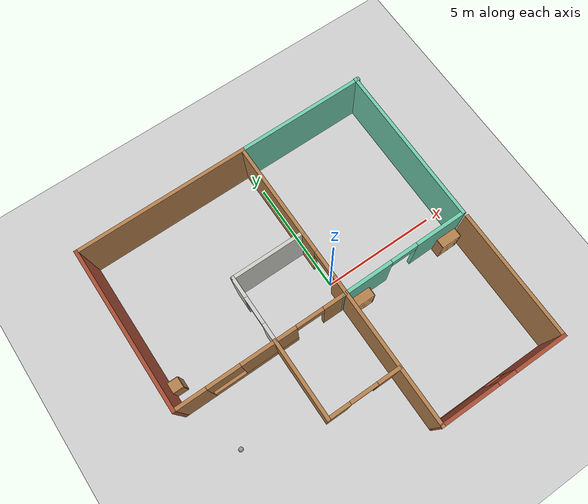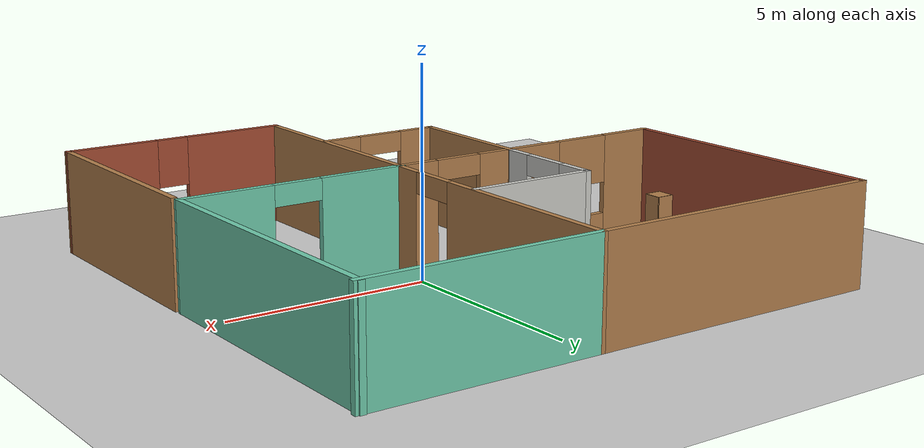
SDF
<sdf version="1.6">
 <world name="default">
  <plugin name="hello" filename="libhello.so"/>
  <light name="sun" type="directional">
   <pose>0 0 10 0 -0 0</pose>
   <diffuse>0.8 0.8 0.8 1</diffuse>
   <specular>0.2 0.2 0.2 1</specular>
   <attenuation>
    <range>1000</range>
    <constant>0.9</constant>
    <linear>0.01</linear>
    <quadratic>0.001</quadratic>
   </attenuation>
   <direction>-0.5 0.1 -0.9</direction>
  </light>
  <model name="ground_plane">
   <static>1</static>
   <link name="link">
    <collision name="collision">
     <geometry><plane><normal>0 0 1</normal><size>100 100</size></plane></geometry>
     <surface><friction><ode><mu>100</mu><mu2>50</mu2></ode></friction></surface>
    </collision>
    <visual name="visual">
     <cast_shadows>0</cast_shadows>
     <geometry><plane><normal>0 0 1</normal><size>100 100</size></plane></geometry>
     <material>
      <script><uri>file://media/materials/scripts/gazebo.material</uri><name>Gazebo/Grey</name></script>
     </material>
    </visual>
   </link>
  </model>
  <gravity>0 0 -9.8</gravity>
  <magnetic_field>6e-06 2.3e-05 -4.2e-05</magnetic_field>
  <atmosphere type="adiabatic"/>
  <physics name="default_physics" default="0" type="ode">
   <max_step_size>0.001</max_step_size>
   <real_time_factor>1</real_time_factor>
   <real_time_update_rate>1000</real_time_update_rate>
  </physics>
  <scene><ambient>0.4 0.4 0.4 1</ambient><background>0.7 0.7 0.7 1</background><shadows>1</shadows></scene>
  <spherical_coordinates>
   <surface_model>EARTH_WGS84</surface_model>
   <latitude_deg>0</latitude_deg>
   <longitude_deg>0</longitude_deg>
   <elevation>0</elevation>
   <heading_deg>0</heading_deg>
  </spherical_coordinates>
  <model name="robohouse-level1">
   <pose>-1.01949 -0.41809 0 0 -0 0</pose>
   <link name="Wall_29">
    <collision name="Wall_29_Collision">
     <geometry><box><size>7.24421 0.15 2.5</size></box></geometry>
     <pose>0 0 1.25 0 -0 0</pose>
    </collision>
    <visual name="Wall_29_Visual">
     <pose>0 0 1.25 0 -0 0</pose>
     <geometry><box><size>7.24421 0.15 2.5</size></box></geometry>
     <material>
      <script><uri>file://media/materials/scripts/gazebo.material</uri><name>Gazebo/Grey</name></script>
      <ambient>0.435294 0.796078 0.67451 1</ambient>
     </material>
     <meta><layer>0</layer></meta>
    </visual>
    <pose>6.47163 2.91936 0 0 -0 1.56934</pose>
   </link>
   <link name="Wall_33">
    <collision name="Wall_33_Collision">
     <geometry><box><size>5.79804 0.15 2.5</size></box></geometry>
     <pose>0 0 1.25 0 -0 0</pose>
    </collision>
    <visual name="Wall_33_Visual">
     <pose>0 0 1.25 0 -0 0</pose>
     <geometry><box><size>5.79804 0.15 2.5</size></box></geometry>
     <material>
      <script><uri>file://media/materials/scripts/gazebo.material</uri><name>Gazebo/Grey</name></script>
      <ambient>0.435294 0.796078 0.67451 1</ambient>
     </material>
     <meta><layer>0</layer></meta>
    </visual>
    <pose>3.73351 6.43806 0 0 -0 5.3e-05</pose>
   </link>
   <link name="Wall_35">
    <collision name="Wall_35_Collision">
     <geometry><box><size>7.61701 0.15 2.5</size></box></geometry>
     <pose>0 0 1.25 0 -0 0</pose>
    </collision>
    <visual name="Wall_35_Visual">
     <pose>0 0 1.25 0 -0 0</pose>
     <geometry><box><size>7.61701 0.15 2.5</size></box></geometry>
     <material>
      <script><uri>file://media/materials/scripts/gazebo.material</uri><name>Gazebo/Wood</name></script>
      <ambient>1 1 1 1</ambient>
     </material>
     <meta><layer>0</layer></meta>
    </visual>
    <pose>-2.82402 6.43806 0 0 -0 3.14155</pose>
   </link>
   <link name="Wall_36">
    <collision name="Wall_36_Collision">
     <geometry><box><size>7.25 0.15 2.5</size></box></geometry>
     <pose>0 0 1.25 0 -0 0</pose>
    </collision>
    <visual name="Wall_36_Visual">
     <pose>0 0 1.25 0 -0 0</pose>
     <geometry><box><size>7.25 0.15 2.5</size></box></geometry>
     <material>
      <script><uri>file://media/materials/scripts/gazebo.material</uri><name>Gazebo/Bricks</name></script>
      <ambient>1 1 1 1</ambient>
     </material>
     <meta><layer>0</layer></meta>
    </visual>
    <pose>-6.55753 2.88821 0 0 0 -1.5708</pose>
   </link>
   <link name="Wall_37">
    <pose>-2.88252 -0.661849 0 0 0 -1.7e-05</pose>
    <visual name="Wall_37_Visual_0">
     <pose>-3.03222 0 1.25 0 -0 0</pose>
     <geometry><box><size>1.43555 0.15 2.5</size></box></geometry>
     <material>
      <script><uri>file://media/materials/scripts/gazebo.material</uri><name>Gazebo/Wood</name></script>
      <ambient>1 1 1 1</ambient>
     </material>
     <meta><layer>0</layer></meta>
    </visual>
    <collision name="Wall_37_Collision_0">
     <geometry><box><size>1.43555 0.15 2.5</size></box></geometry>
     <pose>-3.03222 0 1.25 0 -0 0</pose>
    </collision>
    <visual name="Wall_37_Visual_1">
     <pose>3.25418 0 1.25 0 -0 0</pose>
     <geometry><box><size>0.991638 0.15 2.5</size></box></geometry>
     <material>
      <script><uri>file://media/materials/scripts/gazebo.material</uri><name>Gazebo/Wood</name></script>
      <ambient>1 1 1 1</ambient>
     </material>
     <meta><layer>0</layer></meta>
    </visual>
    <collision name="Wall_37_Collision_1">
     <geometry><box><size>0.991638 0.15 2.5</size></box></geometry>
     <pose>3.25418 0 1.25 0 -0 0</pose>
    </collision>
    <visual name="Wall_37_Visual_2">
     <pose>-0.378044 0 0.25 0 -0 0</pose>
     <geometry><box><size>3.87281 0.15 0.5</size></box></geometry>
     <material>
      <script><uri>file://media/materials/scripts/gazebo.material</uri><name>Gazebo/Wood</name></script>
      <ambient>1 1 1 1</ambient>
     </material>
     <meta><layer>0</layer></meta>
    </visual>
    <collision name="Wall_37_Collision_2">
     <geometry><box><size>3.87281 0.15 0.5</size></box></geometry>
     <pose>-0.378044 0 0.25 0 -0 0</pose>
    </collision>
    <visual name="Wall_37_Visual_3">
     <pose>0.347439 0 1.5 0 -0 0</pose>
     <geometry><box><size>2.42185 0.15 2</size></box></geometry>
     <material>
      <script><uri>file://media/materials/scripts/gazebo.material</uri><name>Gazebo/Wood</name></script>
      <ambient>1 1 1 1</ambient>
     </material>
     <meta><layer>0</layer></meta>
    </visual>
    <collision name="Wall_37_Collision_3">
     <geometry><box><size>2.42185 0.15 2</size></box></geometry>
     <pose>0.347439 0 1.5 0 -0 0</pose>
    </collision>
    <visual name="Wall_37_Visual_4">
     <pose>-1.58897 0 1.9 0 -0 0</pose>
     <geometry><box><size>1.45097 0.15 1.2</size></box></geometry>
     <material>
      <script><uri>file://media/materials/scripts/gazebo.material</uri><name>Gazebo/Wood</name></script>
      <ambient>1 1 1 1</ambient>
     </material>
     <meta><layer>0</layer></meta>
    </visual>
    <collision name="Wall_37_Collision_4">
     <geometry><box><size>1.45097 0.15 1.2</size></box></geometry>
     <pose>-1.58897 0 1.9 0 -0 0</pose>
    </collision>
    <visual name="Wall_37_Visual_5">
     <pose>2.15836 0 2.25 0 -0 0</pose>
     <geometry><box><size>1.2 0.15 0.5</size></box></geometry>
     <material>
      <script><uri>file://media/materials/scripts/gazebo.material</uri><name>Gazebo/Wood</name></script>
      <ambient>1 1 1 1</ambient>
     </material>
     <meta><layer>0</layer></meta>
    </visual>
    <collision name="Wall_37_Collision_5">
     <geometry><box><size>1.2 0.15 0.5</size></box></geometry>
     <pose>2.15836 0 2.25 0 -0 0</pose>
    </collision>
   </link>
   <link name="Wall_38">
    <pose>3.62949 -0.644911 0 0 -0 0.005992</pose>
    <visual name="Wall_38_Visual_0">
     <pose>-1.76196 0 1.25 0 -0 0</pose>
     <geometry><box><size>2.30011 0.15 2.5</size></box></geometry>
     <material>
      <script><uri>file://media/materials/scripts/gazebo.material</uri><name>Gazebo/Grey</name></script>
      <ambient>0.435294 0.796078 0.67451 1</ambient>
     </material>
     <meta><layer>0</layer></meta>
    </visual>
    <collision name="Wall_38_Collision_0">
     <geometry><box><size>2.30011 0.15 2.5</size></box></geometry>
     <pose>-1.76196 0 1.25 0 -0 0</pose>
    </collision>
    <visual name="Wall_38_Visual_1">
     <pose>1.75006 0 1.25 0 -0 0</pose>
     <geometry><box><size>2.32392 0.15 2.5</size></box></geometry>
     <material>
      <script><uri>file://media/materials/scripts/gazebo.material</uri><name>Gazebo/Grey</name></script>
      <ambient>0.435294 0.796078 0.67451 1</ambient>
     </material>
     <meta><layer>0</layer></meta>
    </visual>
    <collision name="Wall_38_Collision_1">
     <geometry><box><size>2.32392 0.15 2.5</size></box></geometry>
     <pose>1.75006 0 1.25 0 -0 0</pose>
    </collision>
    <visual name="Wall_38_Visual_2">
     <pose>-0.011903 0 2.25 0 -0 0</pose>
     <geometry><box><size>1.2 0.15 0.5</size></box></geometry>
     <material>
      <script><uri>file://media/materials/scripts/gazebo.material</uri><name>Gazebo/Grey</name></script>
      <ambient>0.435294 0.796078 0.67451 1</ambient>
     </material>
     <meta><layer>0</layer></meta>
    </visual>
    <collision name="Wall_38_Collision_2">
     <geometry><box><size>1.2 0.15 0.5</size></box></geometry>
     <pose>-0.011903 0 2.25 0 -0 0</pose>
    </collision>
   </link>
   <link name="Wall_41">
    <pose>0.909486 2.88791 0 0 0 -1.5708</pose>
    <visual name="Wall_41_Visual_0">
     <pose>-1.03109 0 1.25 0 -0 0</pose>
     <geometry><box><size>5.18782 0.15 2.5</size></box></geometry>
     <material>
      <script><uri>file://media/materials/scripts/gazebo.material</uri><name>Gazebo/Wood</name></script>
      <ambient>1 1 1 1</ambient>
     </material>
     <meta><layer>0</layer></meta>
    </visual>
    <collision name="Wall_41_Collision_0">
     <geometry><box><size>5.18782 0.15 2.5</size></box></geometry>
     <pose>-1.03109 0 1.25 0 -0 0</pose>
    </collision>
    <visual name="Wall_41_Visual_1">
     <pose>3.19391 0 1.25 0 -0 0</pose>
     <geometry><box><size>0.862178 0.15 2.5</size></box></geometry>
     <material>
      <script><uri>file://media/materials/scripts/gazebo.material</uri><name>Gazebo/Wood</name></script>
      <ambient>1 1 1 1</ambient>
     </material>
     <meta><layer>0</layer></meta>
    </visual>
    <collision name="Wall_41_Collision_1">
     <geometry><box><size>0.862178 0.15 2.5</size></box></geometry>
     <pose>3.19391 0 1.25 0 -0 0</pose>
    </collision>
    <visual name="Wall_41_Visual_2">
     <pose>2.16282 0 2.25 0 -0 0</pose>
     <geometry><box><size>1.2 0.15 0.5</size></box></geometry>
     <material>
      <script><uri>file://media/materials/scripts/gazebo.material</uri><name>Gazebo/Wood</name></script>
      <ambient>1 1 1 1</ambient>
     </material>
     <meta><layer>0</layer></meta>
    </visual>
    <collision name="Wall_41_Collision_2">
     <geometry><box><size>1.2 0.15 0.5</size></box></geometry>
     <pose>2.16282 0 2.25 0 -0 0</pose>
    </collision>
   </link>
   <link name="Wall_44">
    <collision name="Wall_44_Collision">
     <geometry><box><size>5.93712 0.15 2.5</size></box></geometry>
     <pose>0 0 1.25 0 -0 0</pose>
    </collision>
    <visual name="Wall_44_Visual">
     <pose>0 0 1.25 0 -0 0</pose>
     <geometry><box><size>5.93712 0.15 2.5</size></box></geometry>
     <material>
      <script><uri>file://media/materials/scripts/gazebo.material</uri><name>Gazebo/Wood</name></script>
      <ambient>1 1 1 1</ambient>
     </material>
     <meta><layer>0</layer></meta>
    </visual>
    <pose>0.909486 -3.55565 0 0 0 -1.5708</pose>
   </link>
   <link name="Wall_46">
    <collision name="Wall_46_Collision">
     <geometry><box><size>3.5 0.15 2.5</size></box></geometry>
     <pose>0 0 1.25 0 -0 0</pose>
    </collision>
    <visual name="Wall_46_Visual">
     <pose>0 0 1.25 0 -0 0</pose>
     <geometry><box><size>3.5 0.15 2.5</size></box></geometry>
     <material>
      <script><uri>file://media/materials/scripts/gazebo.material</uri><name>Gazebo/Wood</name></script>
      <ambient>1 1 1 1</ambient>
     </material>
     <meta><layer>0</layer></meta>
    </visual>
    <pose>-2.24403 -2.31187 0 0 0 -1.5708</pose>
   </link>
   <link name="Wall_47">
    <pose>-0.694028 -3.98687 0 0 -0 0</pose>
    <visual name="Wall_47_Visual_0">
     <pose>-1.1065 0 1.25 0 -0 0</pose>
     <geometry><box><size>1.03699 0.15 2.5</size></box></geometry>
     <material>
      <script><uri>file://media/materials/scripts/gazebo.material</uri><name>Gazebo/Wood</name></script>
      <ambient>1 1 1 1</ambient>
     </material>
     <meta><layer>0</layer></meta>
    </visual>
    <collision name="Wall_47_Collision_0">
     <geometry><box><size>1.03699 0.15 2.5</size></box></geometry>
     <pose>-1.1065 0 1.25 0 -0 0</pose>
    </collision>
    <visual name="Wall_47_Visual_1">
     <pose>1.1185 0 1.25 0 -0 0</pose>
     <geometry><box><size>1.01301 0.15 2.5</size></box></geometry>
     <material>
      <script><uri>file://media/materials/scripts/gazebo.material</uri><name>Gazebo/Wood</name></script>
      <ambient>1 1 1 1</ambient>
     </material>
     <meta><layer>0</layer></meta>
    </visual>
    <collision name="Wall_47_Collision_1">
     <geometry><box><size>1.01301 0.15 2.5</size></box></geometry>
     <pose>1.1185 0 1.25 0 -0 0</pose>
    </collision>
    <visual name="Wall_47_Visual_2">
     <pose>0.011994 0 2.25 0 -0 0</pose>
     <geometry><box><size>1.2 0.15 0.5</size></box></geometry>
     <material>
      <script><uri>file://media/materials/scripts/gazebo.material</uri><name>Gazebo/Wood</name></script>
      <ambient>1 1 1 1</ambient>
     </material>
     <meta><layer>0</layer></meta>
    </visual>
    <collision name="Wall_47_Collision_2">
     <geometry><box><size>1.2 0.15 0.5</size></box></geometry>
     <pose>0.011994 0 2.25 0 -0 0</pose>
    </collision>
   </link>
   <link name="Wall_49">
    <pose>-2.24403 0.788134 0 0 -0 1.5708</pose>
    <visual name="Wall_49_Visual_0">
     <pose>-1.0815 0 1.25 0 -0 0</pose>
     <geometry><box><size>0.837004 0.15 2.5</size></box></geometry>
     <material>
      <script><uri>file://media/materials/scripts/gazebo.material</uri><name>Gazebo/CeilingTiled</name></script>
      <ambient>0.760784 0.662745 0.627451 1</ambient>
     </material>
     <meta><layer>0</layer></meta>
    </visual>
    <collision name="Wall_49_Collision_0">
     <geometry><box><size>0.837004 0.15 2.5</size></box></geometry>
     <pose>-1.0815 0 1.25 0 -0 0</pose>
    </collision>
    <visual name="Wall_49_Visual_1">
     <pose>1.0185 0 1.25 0 -0 0</pose>
     <geometry><box><size>0.962996 0.15 2.5</size></box></geometry>
     <material>
      <script><uri>file://media/materials/scripts/gazebo.material</uri><name>Gazebo/CeilingTiled</name></script>
      <ambient>0.760784 0.662745 0.627451 1</ambient>
     </material>
     <meta><layer>0</layer></meta>
    </visual>
    <collision name="Wall_49_Collision_1">
     <geometry><box><size>0.962996 0.15 2.5</size></box></geometry>
     <pose>1.0185 0 1.25 0 -0 0</pose>
    </collision>
    <visual name="Wall_49_Visual_2">
     <pose>-0.062996 0 2.25 0 -0 0</pose>
     <geometry><box><size>1.2 0.15 0.5</size></box></geometry>
     <material>
      <script><uri>file://media/materials/scripts/gazebo.material</uri><name>Gazebo/CeilingTiled</name></script>
      <ambient>0.760784 0.662745 0.627451 1</ambient>
     </material>
     <meta><layer>0</layer></meta>
    </visual>
    <collision name="Wall_49_Collision_2">
     <geometry><box><size>1.2 0.15 0.5</size></box></geometry>
     <pose>-0.062996 0 2.25 0 -0 0</pose>
    </collision>
   </link>
   <link name="Wall_5">
    <collision name="Wall_5_Collision">
     <geometry><box><size>5.75 0.15 2.5</size></box></geometry>
     <pose>0 0 1.25 0 -0 0</pose>
    </collision>
    <visual name="Wall_5_Visual">
     <pose>0 0 1.25 0 -0 0</pose>
     <geometry><box><size>5.75 0.15 2.5</size></box></geometry>
     <material>
      <script><uri>file://media/materials/scripts/gazebo.material</uri><name>Gazebo/Wood</name></script>
      <ambient>1 1 1 1</ambient>
     </material>
     <meta><layer>0</layer></meta>
    </visual>
    <pose>6.49236 -3.66634 0 0 0 -1.5708</pose>
   </link>
   <link name="Wall_50">
    <collision name="Wall_50_Collision">
     <geometry><box><size>0.15 0.15 2.5</size></box></geometry>
     <pose>0 0 1.25 0 -0 0</pose>
    </collision>
    <visual name="Wall_50_Visual">
     <pose>0 0 1.25 0 -0 0</pose>
     <geometry><box><size>0.15 0.15 2.5</size></box></geometry>
     <material>
      <script><uri>file://media/materials/scripts/gazebo.material</uri><name>Gazebo/Grey</name></script>
      <ambient>1 1 1 1</ambient>
     </material>
     <meta><layer>0</layer></meta>
    </visual>
    <pose>-2.24403 2.21313 0 0 -0 0</pose>
   </link>
   <link name="Wall_51">
    <collision name="Wall_51_Collision">
     <geometry><box><size>3.25 0.15 2.5</size></box></geometry>
     <pose>0 0 1.25 0 -0 0</pose>
    </collision>
    <visual name="Wall_51_Visual">
     <pose>0 0 1.25 0 -0 0</pose>
     <geometry><box><size>3.25 0.15 2.5</size></box></geometry>
     <material>
      <script><uri>file://media/materials/scripts/gazebo.material</uri><name>Gazebo/CeilingTiled</name></script>
      <ambient>0.760784 0.662745 0.627451 1</ambient>
     </material>
     <meta><layer>0</layer></meta>
    </visual>
    <pose>-0.694028 2.21313 0 0 -0 0</pose>
   </link>
   <link name="Wall_6">
    <pose>3.70092 -6.45778 0 0 -0 3.13852</pose>
    <visual name="Wall_6_Visual_0">
     <pose>-1.6953 0 1.25 0 -0 0</pose>
     <geometry><box><size>2.3423 0.15 2.5</size></box></geometry>
     <material>
      <script><uri>file://media/materials/scripts/gazebo.material</uri><name>Gazebo/Bricks</name></script>
      <ambient>1 1 1 1</ambient>
     </material>
     <meta><layer>0</layer></meta>
    </visual>
    <collision name="Wall_6_Collision_0">
     <geometry><box><size>2.3423 0.15 2.5</size></box></geometry>
     <pose>-1.6953 0 1.25 0 -0 0</pose>
    </collision>
    <visual name="Wall_6_Visual_1">
     <pose>1.17115 0 0.25 0 -0 0</pose>
     <geometry><box><size>3.3906 0.15 0.5</size></box></geometry>
     <material>
      <script><uri>file://media/materials/scripts/gazebo.material</uri><name>Gazebo/Bricks</name></script>
      <ambient>1 1 1 1</ambient>
     </material>
     <meta><layer>0</layer></meta>
    </visual>
    <collision name="Wall_6_Collision_1">
     <geometry><box><size>3.3906 0.15 0.5</size></box></geometry>
     <pose>1.17115 0 0.25 0 -0 0</pose>
    </collision>
    <visual name="Wall_6_Visual_2">
     <pose>1.57115 0 1.5 0 -0 0</pose>
     <geometry><box><size>2.5906 0.15 2</size></box></geometry>
     <material>
      <script><uri>file://media/materials/scripts/gazebo.material</uri><name>Gazebo/Bricks</name></script>
      <ambient>1 1 1 1</ambient>
     </material>
     <meta><layer>0</layer></meta>
    </visual>
    <collision name="Wall_6_Collision_2">
     <geometry><box><size>2.5906 0.15 2</size></box></geometry>
     <pose>1.57115 0 1.5 0 -0 0</pose>
    </collision>
    <visual name="Wall_6_Visual_3">
     <pose>-0.124149 0 1.9 0 -0 0</pose>
     <geometry><box><size>0.8 0.15 1.2</size></box></geometry>
     <material>
      <script><uri>file://media/materials/scripts/gazebo.material</uri><name>Gazebo/Bricks</name></script>
      <ambient>1 1 1 1</ambient>
     </material>
     <meta><layer>0</layer></meta>
    </visual>
    <collision name="Wall_6_Collision_3">
     <geometry><box><size>0.8 0.15 1.2</size></box></geometry>
     <pose>-0.124149 0 1.9 0 -0 0</pose>
    </collision>
   </link>
   <link name="Window_0">
    <collision name="Window_0_Collision">
     <geometry><box><size>1.4 0.17 0.8</size></box></geometry>
     <pose>0 0 0.4 0 -0 0</pose>
    </collision>
    <visual name="Window_0_Visual">
     <pose>0 0 0.4 0 -0 0</pose>
     <geometry><box><size>1.4 0.17 0.8</size></box></geometry>
     <material>
      <script><uri>file://media/materials/scripts/gazebo.material</uri><name>Gazebo/Grey</name></script>
     </material>
    </visual>
    <pose>1.99581 -6.51508 0.5 0 -0 3.12809</pose>
   </link>
   <static>1</static>
  </model>
  <model name="bookshelf">
   <static>1</static>
   <link name="link">
    <inertial><mass>1</mass></inertial>
    <collision name="back">
     <pose>0 0.005 0.6 0 -0 0</pose>
     <geometry><box><size>0.9 0.01 1.2</size></box></geometry>
    </collision>
    <visual name="visual1">
     <pose>0 0.005 0.6 0 -0 0</pose>
     <geometry><box><size>0.9 0.01 1.2</size></box></geometry>
     <material>
      <script><uri>file://media/materials/scripts/gazebo.material</uri><name>Gazebo/Wood</name></script>
     </material>
    </visual>
    <collision name="left_side">
     <pose>0.45 -0.195 0.6 0 -0 0</pose>
     <geometry><box><size>0.02 0.4 1.2</size></box></geometry>
    </collision>
    <visual name="visual2">
     <pose>0.45 -0.195 0.6 0 -0 0</pose>
     <geometry><box><size>0.02 0.4 1.2</size></box></geometry>
     <material>
      <script><uri>file://media/materials/scripts/gazebo.material</uri><name>Gazebo/Wood</name></script>
     </material>
    </visual>
    <collision name="right_side">
     <pose>-0.45 -0.195 0.6 0 -0 0</pose>
     <geometry><box><size>0.02 0.4 1.2</size></box></geometry>
    </collision>
    <visual name="visual3">
     <pose>-0.45 -0.195 0.6 0 -0 0</pose>
     <geometry><box><size>0.02 0.4 1.2</size></box></geometry>
     <material>
      <script><uri>file://media/materials/scripts/gazebo.material</uri><name>Gazebo/Wood</name></script>
     </material>
    </visual>
    <collision name="bottom">
     <pose>0 -0.195 0.03 0 -0 0</pose>
     <geometry><box><size>0.88 0.4 0.06</size></box></geometry>
    </collision>
    <visual name="visual4">
     <pose>0 -0.195 0.03 0 -0 0</pose>
     <geometry><box><size>0.88 0.4 0.06</size></box></geometry>
     <material>
      <script><uri>file://media/materials/scripts/gazebo.material</uri><name>Gazebo/Wood</name></script>
     </material>
    </visual>
    <collision name="top">
     <pose>0 -0.195 1.19 0 -0 0</pose>
     <geometry><box><size>0.88 0.4 0.02</size></box></geometry>
    </collision>
    <visual name="visual5">
     <pose>0 -0.195 1.19 0 -0 0</pose>
     <geometry><box><size>0.88 0.4 0.02</size></box></geometry>
     <material>
      <script><uri>file://media/materials/scripts/gazebo.material</uri><name>Gazebo/Wood</name></script>
     </material>
    </visual>
    <collision name="low_shelf">
     <pose>0 -0.195 0.43 0 -0 0</pose>
     <geometry><box><size>0.88 0.4 0.02</size></box></geometry>
    </collision>
    <visual name="visual6">
     <pose>0 -0.195 0.43 0 -0 0</pose>
     <geometry><box><size>0.88 0.4 0.02</size></box></geometry>
     <material>
      <script><uri>file://media/materials/scripts/gazebo.material</uri><name>Gazebo/Wood</name></script>
     </material>
    </visual>
    <collision name="high_shelf">
     <pose>0 -0.195 0.8 0 -0 0</pose>
     <geometry><box><size>0.88 0.4 0.02</size></box></geometry>
    </collision>
    <visual name="visual7">
     <pose>0 -0.195 0.8 0 -0 0</pose>
     <geometry><box><size>0.88 0.4 0.02</size></box></geometry>
     <material>
      <script><uri>file://media/materials/scripts/gazebo.material</uri><name>Gazebo/Wood</name></script>
     </material>
    </visual>
   </link>
   <pose>0.538595 -1.18322 0 0 -0 0</pose>
  </model>
  <model name="bookshelf_clone">
   <static>1</static>
   <link name="link">
    <inertial><mass>1</mass></inertial>
    <collision name="back">
     <pose>0 0.005 0.6 0 -0 0</pose>
     <geometry><box><size>0.9 0.01 1.2</size></box></geometry>
    </collision>
    <visual name="visual1">
     <pose>0 0.005 0.6 0 -0 0</pose>
     <geometry><box><size>0.9 0.01 1.2</size></box></geometry>
     <material>
      <script><uri>file://media/materials/scripts/gazebo.material</uri><name>Gazebo/Wood</name></script>
     </material>
    </visual>
    <collision name="left_side">
     <pose>0.45 -0.195 0.6 0 -0 0</pose>
     <geometry><box><size>0.02 0.4 1.2</size></box></geometry>
    </collision>
    <visual name="visual2">
     <pose>0.45 -0.195 0.6 0 -0 0</pose>
     <geometry><box><size>0.02 0.4 1.2</size></box></geometry>
     <material>
      <script><uri>file://media/materials/scripts/gazebo.material</uri><name>Gazebo/Wood</name></script>
     </material>
    </visual>
    <collision name="right_side">
     <pose>-0.45 -0.195 0.6 0 -0 0</pose>
     <geometry><box><size>0.02 0.4 1.2</size></box></geometry>
    </collision>
    <visual name="visual3">
     <pose>-0.45 -0.195 0.6 0 -0 0</pose>
     <geometry><box><size>0.02 0.4 1.2</size></box></geometry>
     <material>
      <script><uri>file://media/materials/scripts/gazebo.material</uri><name>Gazebo/Wood</name></script>
     </material>
    </visual>
    <collision name="bottom">
     <pose>0 -0.195 0.03 0 -0 0</pose>
     <geometry><box><size>0.88 0.4 0.06</size></box></geometry>
    </collision>
    <visual name="visual4">
     <pose>0 -0.195 0.03 0 -0 0</pose>
     <geometry><box><size>0.88 0.4 0.06</size></box></geometry>
     <material>
      <script><uri>file://media/materials/scripts/gazebo.material</uri><name>Gazebo/Wood</name></script>
     </material>
    </visual>
    <collision name="top">
     <pose>0 -0.195 1.19 0 -0 0</pose>
     <geometry><box><size>0.88 0.4 0.02</size></box></geometry>
    </collision>
    <visual name="visual5">
     <pose>0 -0.195 1.19 0 -0 0</pose>
     <geometry><box><size>0.88 0.4 0.02</size></box></geometry>
     <material>
      <script><uri>file://media/materials/scripts/gazebo.material</uri><name>Gazebo/Wood</name></script>
     </material>
    </visual>
    <collision name="low_shelf">
     <pose>0 -0.195 0.43 0 -0 0</pose>
     <geometry><box><size>0.88 0.4 0.02</size></box></geometry>
    </collision>
    <visual name="visual6">
     <pose>0 -0.195 0.43 0 -0 0</pose>
     <geometry><box><size>0.88 0.4 0.02</size></box></geometry>
     <material>
      <script><uri>file://media/materials/scripts/gazebo.material</uri><name>Gazebo/Wood</name></script>
     </material>
    </visual>
    <collision name="high_shelf">
     <pose>0 -0.195 0.8 0 -0 0</pose>
     <geometry><box><size>0.88 0.4 0.02</size></box></geometry>
    </collision>
    <visual name="visual7">
     <pose>0 -0.195 0.8 0 -0 0</pose>
     <geometry><box><size>0.88 0.4 0.02</size></box></geometry>
     <material>
      <script><uri>file://media/materials/scripts/gazebo.material</uri><name>Gazebo/Wood</name></script>
     </material>
    </visual>
   </link>
   <pose>4.82303 -1.16709 0 0 -0 0</pose>
  </model>
  <model name="cabinet">
   <static>1</static>
   <link name="cabinet_bottom_plate">
    <inertial>
     <pose>0 0 -1 0 -0 0</pose>
     <inertia><ixx>2.05</ixx><ixy>0</ixy><ixz>0</ixz><iyy>2.05</iyy><iyz>0</iyz><izz>2.05</izz></inertia>
     <mass>25</mass>
    </inertial>
    <collision name="cabinet_bottom_plate_geom">
     <pose>0 0 0.01 0 -0 0</pose>
     <geometry><box><size>0.45 0.45 0.02</size></box></geometry>
    </collision>
    <visual name="cabinet_bottom_plate_geom_visual">
     <pose>0 0 0.01 0 -0 0</pose>
     <geometry><box><size>0.45 0.45 0.02</size></box></geometry>
     <material>
      <script><uri>file://media/materials/scripts/gazebo.material</uri><name>Gazebo/Wood</name></script>
     </material>
    </visual>
    <collision name="cabinet_bottom_plate_geom_cabinet_back_plate">
     <pose>0.235 0 0.51 0 -0 0</pose>
     <geometry><box><size>0.02 0.45 1.02</size></box></geometry>
    </collision>
    <visual name="cabinet_bottom_plate_geom_cabinet_back_plate_visual">
     <pose>0.235 0 0.51 0 -0 0</pose>
     <geometry><box><size>0.02 0.45 1.02</size></box></geometry>
     <material>
      <script><uri>file://media/materials/scripts/gazebo.material</uri><name>Gazebo/Wood</name></script>
     </material>
    </visual>
    <collision name="cabinet_bottom_plate_geom_cabinet_left_plate">
     <pose>0 0.235 0.51 0 -0 0</pose>
     <geometry><box><size>0.45 0.02 1.02</size></box></geometry>
    </collision>
    <visual name="cabinet_bottom_plate_geom_cabinet_left_plate_visual">
     <pose>0 0.235 0.51 0 -0 0</pose>
     <geometry><box><size>0.45 0.02 1.02</size></box></geometry>
     <material>
      <script><uri>file://media/materials/scripts/gazebo.material</uri><name>Gazebo/Wood</name></script>
     </material>
    </visual>
    <collision name="cabinet_bottom_plate_geom_cabinet_middle_plate">
     <pose>0 0 0.51 0 -0 0</pose>
     <geometry><box><size>0.45 0.45 0.02</size></box></geometry>
    </collision>
    <visual name="cabinet_bottom_plate_geom_cabinet_middle_plate_visual">
     <pose>0 0 0.51 0 -0 0</pose>
     <geometry><box><size>0.45 0.45 0.02</size></box></geometry>
     <material>
      <script><uri>file://media/materials/scripts/gazebo.material</uri><name>Gazebo/Wood</name></script>
     </material>
    </visual>
    <collision name="cabinet_bottom_plate_geom_cabinet_right_plate">
     <pose>0 -0.235 0.51 0 -0 0</pose>
     <geometry><box><size>0.45 0.02 1.02</size></box></geometry>
    </collision>
    <visual name="cabinet_bottom_plate_geom_cabinet_right_plate_visual">
     <pose>0 -0.235 0.51 0 -0 0</pose>
     <geometry><box><size>0.45 0.02 1.02</size></box></geometry>
     <material>
      <script><uri>file://media/materials/scripts/gazebo.material</uri><name>Gazebo/Wood</name></script>
     </material>
    </visual>
    <collision name="cabinet_bottom_plate_geom_cabinet_top_plate">
     <pose>0 0 1.01 0 -0 0</pose>
     <geometry><box><size>0.45 0.45 0.02</size></box></geometry>
    </collision>
    <visual name="cabinet_bottom_plate_geom_cabinet_top_plate_visual">
     <pose>0 0 1.01 0 -0 0</pose>
     <geometry><box><size>0.45 0.45 0.02</size></box></geometry>
     <material>
      <script><uri>file://media/materials/scripts/gazebo.material</uri><name>Gazebo/Wood</name></script>
     </material>
    </visual>
   </link>
   <pose>-7.24294 -0.066016 0 0 -0 0</pose>
  </model>
  <model name="my_ball">
   <link name="link_1">
    <inertial>
     <mass>1</mass>
     <inertia><ixx>0.1</ixx><ixy>0</ixy><ixz>0</ixz><iyy>0.1</iyy><iyz>0</iyz><izz>0.1</izz></inertia>
    </inertial>
    <visual name="visual">
     <geometry><sphere><radius>0.1</radius></sphere></geometry>
     <material>
      <lighting>1</lighting>
      <script><uri>file://media/materials/scripts/gazebo.material</uri><name>Gazebo/Grey</name></script>
      <shader type="pixel"><normal_map>__default__</normal_map></shader>
      <ambient>1 1 1 1</ambient>
      <diffuse>1 1 1 1</diffuse>
      <specular>1 1 1 1</specular>
      <emissive>1 1 1 1</emissive>
     </material>
    </visual>
    <collision name="collision">
     <geometry><sphere><radius>0.1</radius></sphere></geometry>
     <surface>
      <friction>
       <ode><mu>1</mu><mu2>1</mu2><fdir1>0 0 0</fdir1><slip1>0</slip1><slip2>0</slip2></ode>
       <torsional>
        <coefficient>1</coefficient>
        <patch_radius>0</patch_radius>
        <surface_radius>0</surface_radius>
        <use_patch_radius>1</use_patch_radius>
        <ode><slip>0</slip></ode>
       </torsional>
      </friction>
      <bounce><restitution_coefficient>0</restitution_coefficient><threshold>1e+06</threshold></bounce>
      <contact>
       <collide_without_contact>0</collide_without_contact>
       <collide_without_contact_bitmask>1</collide_without_contact_bitmask>
       <collide_bitmask>1</collide_bitmask>
       <ode>
        <soft_cfm>0</soft_cfm>
        <soft_erp>0.2</soft_erp>
        <kp>1e+13</kp>
        <kd>1</kd>
        <max_vel>0.01</max_vel>
        <min_depth>0</min_depth>
       </ode>
       <bullet>
        <split_impulse>1</split_impulse>
        <split_impulse_penetration_threshold>-0.01</split_impulse_penetration_threshold>
        <soft_cfm>0</soft_cfm>
        <soft_erp>0.2</soft_erp>
        <kp>1e+13</kp>
        <kd>1</kd>
       </bullet>
      </contact>
     </surface>
    </collision>
   </link>
   <static>0</static>
   <pose>-6.54713 -3.37735 0.1 0 -0 0</pose>
  </model>
 </world>
</sdf>
